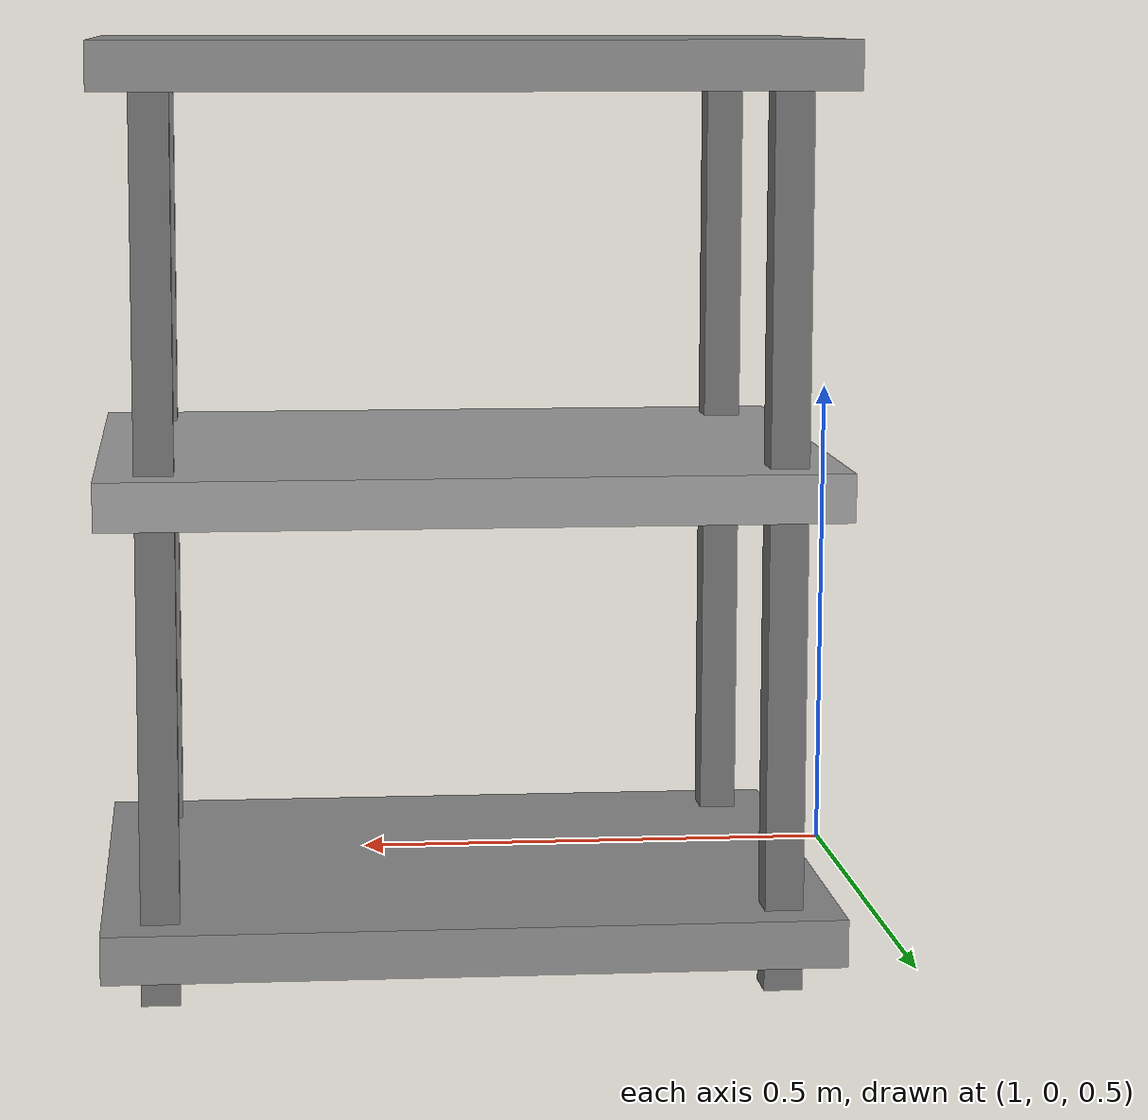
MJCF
<mujoco model="transport_shelf">
  <worldbody>
    <body name="transport_shelf" pos="1.4 0 0">
      <geom name="shelf_bottom" type="box" size="0.38 0.28 0.025" pos="0 0 0.46" rgba="0.55 0.55 0.55 1"
            friction="1.05 0.025 0.002"/>
      <geom name="shelf_target" type="box" size="0.38 0.28 0.025" pos="0 0 0.92" rgba="0.62 0.62 0.62 1"
            friction="1.1 0.03 0.002"/>
      <geom name="shelf_top" type="box" size="0.38 0.28 0.025" pos="0 0 1.35" rgba="0.55 0.55 0.55 1"/>
      <geom name="shelf_post_fl" type="box" size="0.02 0.02 0.48" pos="0.32 0.22 0.88" rgba="0.45 0.45 0.45 1"/>
      <geom name="shelf_post_fr" type="box" size="0.02 0.02 0.48" pos="0.32 -0.22 0.88" rgba="0.45 0.45 0.45 1"/>
      <geom name="shelf_post_bl" type="box" size="0.02 0.02 0.48" pos="-0.32 0.22 0.88" rgba="0.45 0.45 0.45 1"/>
      <geom name="shelf_post_br" type="box" size="0.02 0.02 0.48" pos="-0.32 -0.22 0.88" rgba="0.45 0.45 0.45 1"/>
    </body>
  </worldbody>
</mujoco>
